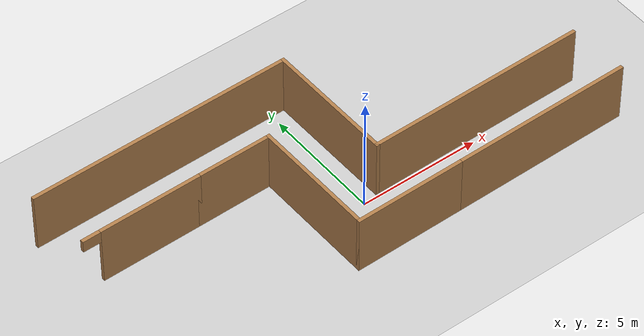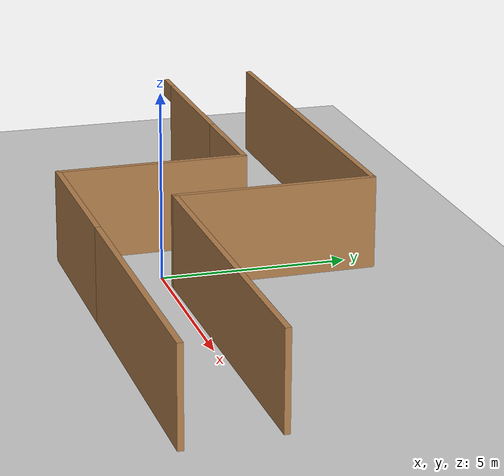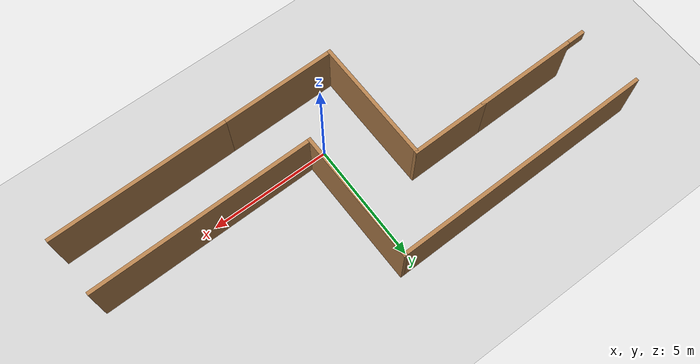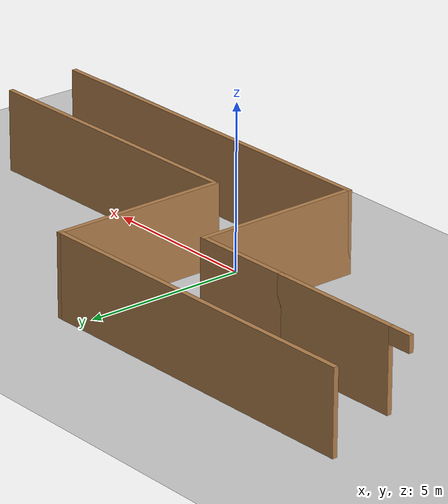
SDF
<sdf version="1.7">
 <world name="default">
  <model name="ground_plane">
   <static>1</static>
   <link name="link">
    <collision name="collision">
     <geometry><plane><normal>0 0 1</normal><size>100 100</size></plane></geometry>
     <surface><friction><ode><mu>100</mu><mu2>50</mu2></ode></friction></surface>
    </collision>
    <visual name="visual">
     <cast_shadows>0</cast_shadows>
     <geometry><plane><normal>0 0 1</normal><size>100 100</size></plane></geometry>
     <material>
      <script><uri>file://media/materials/scripts/gazebo.material</uri><name>Gazebo/Grey</name></script>
     </material>
    </visual>
   </link>
  </model>
  <light name="sun" type="directional">
   <pose>0 0 10 0 -0 0</pose>
   <diffuse>0.8 0.8 0.8 1</diffuse>
   <specular>0.2 0.2 0.2 1</specular>
   <attenuation>
    <range>1000</range>
    <constant>0.9</constant>
    <linear>0.01</linear>
    <quadratic>0.001</quadratic>
   </attenuation>
   <direction>-0.5 0.1 -0.9</direction>
   <spot><inner_angle>0</inner_angle><outer_angle>0</outer_angle><falloff>0</falloff></spot>
  </light>
  <scene><shadows>0</shadows><ambient>0.4 0.4 0.4 1</ambient><background>0.7 0.7 0.7 1</background></scene>
  <physics type="ode">
   <real_time_update_rate>1000</real_time_update_rate>
   <max_step_size>0.001</max_step_size>
   <real_time_factor>1</real_time_factor>
   <ode>
    <solver>
     <type>quick</type>
     <iters>150</iters>
     <precon_iters>0</precon_iters>
     <sor>1.4</sor>
     <use_dynamic_moi_rescaling>1</use_dynamic_moi_rescaling>
    </solver>
    <constraints>
     <cfm>1e-05</cfm>
     <erp>0.2</erp>
     <contact_max_correcting_vel>2000</contact_max_correcting_vel>
     <contact_surface_layer>0.01</contact_surface_layer>
    </constraints>
   </ode>
  </physics>
  <gravity>0 0 -9.8</gravity>
  <magnetic_field>6e-06 2.3e-05 -4.2e-05</magnetic_field>
  <atmosphere type="adiabatic"/>
  <audio><device>default</device></audio>
  <spherical_coordinates>
   <surface_model>EARTH_WGS84</surface_model>
   <latitude_deg>0</latitude_deg>
   <longitude_deg>0</longitude_deg>
   <elevation>0</elevation>
   <heading_deg>0</heading_deg>
  </spherical_coordinates>
  <model name="maze">
   <pose>-0.140321 1.6336 0 0 0 -1.55919</pose>
   <link name="Wall_10">
    <collision name="Wall_10_Collision">
     <geometry><box><size>9.25 0.15 2.5</size></box></geometry>
     <pose>0 0 1.25 0 -0 0</pose>
    </collision>
    <visual name="Wall_10_Visual">
     <pose>0 0 1.25 0 -0 0</pose>
     <geometry><box><size>9.25 0.15 2.5</size></box></geometry>
     <material>
      <script><uri>file://media/materials/scripts/gazebo.material</uri><name>Gazebo/Wood</name></script>
      <ambient>1 1 1 1</ambient>
     </material>
     <meta><layer>0</layer></meta>
    </visual>
    <pose>1.46014 5.35787 0 0 -0 -1.5708</pose>
   </link>
   <link name="Wall_11">
    <collision name="Wall_11_Collision">
     <geometry><box><size>5.5 0.15 2.5</size></box></geometry>
     <pose>0 0 1.25 0 -0 0</pose>
    </collision>
    <visual name="Wall_11_Visual">
     <pose>0 0 1.25 0 -0 0</pose>
     <geometry><box><size>5.5 0.15 2.5</size></box></geometry>
     <material>
      <script><uri>file://media/materials/scripts/gazebo.material</uri><name>Gazebo/Wood</name></script>
      <ambient>1 1 1 1</ambient>
     </material>
     <meta><layer>0</layer></meta>
    </visual>
    <pose>-1.21486 0.80787 0 0 -0 3.14159</pose>
   </link>
   <link name="Wall_12">
    <collision name="Wall_12_Collision">
     <geometry><box><size>11 0.15 2.5</size></box></geometry>
     <pose>0 0 1.25 0 -0 0</pose>
    </collision>
    <visual name="Wall_12_Visual">
     <pose>0 0 1.25 0 -0 0</pose>
     <geometry><box><size>11 0.15 2.5</size></box></geometry>
     <material>
      <script><uri>file://media/materials/scripts/gazebo.material</uri><name>Gazebo/Wood</name></script>
      <ambient>1 1 1 1</ambient>
     </material>
     <meta><layer>0</layer></meta>
    </visual>
    <pose>-3.88986 -4.61713 0 0 -0 -1.5708</pose>
   </link>
   <link name="Wall_14">
    <pose>-1.21014 -7.43287 0 0 -0 -1.5708</pose>
    <visual name="Wall_14_Visual_0">
     <pose>-0.375348 0 1.25 0 -0 0</pose>
     <geometry><box><size>4.2493 0.15 2.5</size></box></geometry>
     <material>
      <script><uri>file://media/materials/scripts/gazebo.material</uri><name>Gazebo/Wood</name></script>
      <ambient>1 1 1 1</ambient>
     </material>
     <meta><layer>0</layer></meta>
    </visual>
    <collision name="Wall_14_Collision_0">
     <geometry><box><size>4.2493 0.15 2.5</size></box></geometry>
     <pose>-0.375348 0 1.25 0 -0 0</pose>
    </collision>
    <visual name="Wall_14_Visual_1">
     <pose>2.12465 0 2.25 0 -0 0</pose>
     <geometry><box><size>0.750695 0.15 0.5</size></box></geometry>
     <material>
      <script><uri>file://media/materials/scripts/gazebo.material</uri><name>Gazebo/Wood</name></script>
      <ambient>1 1 1 1</ambient>
     </material>
     <meta><layer>0</layer></meta>
    </visual>
    <collision name="Wall_14_Collision_1">
     <geometry><box><size>0.750695 0.15 0.5</size></box></geometry>
     <pose>2.12465 0 2.25 0 -0 0</pose>
    </collision>
   </link>
   <link name="Wall_2">
    <collision name="Wall_2_Collision">
     <geometry><box><size>3.25 0.15 2.5</size></box></geometry>
     <pose>0 0 1.25 0 -0 0</pose>
    </collision>
    <visual name="Wall_2_Visual">
     <pose>0 0 1.25 0 -0 0</pose>
     <geometry><box><size>3.25 0.15 2.5</size></box></geometry>
     <material>
      <script><uri>file://media/materials/scripts/gazebo.material</uri><name>Gazebo/Wood</name></script>
      <ambient>1 1 1 1</ambient>
     </material>
     <meta><layer>0</layer></meta>
    </visual>
    <pose>-1.21014 -3.45787 0 0 -0 1.5708</pose>
   </link>
   <link name="Wall_3">
    <collision name="Wall_3_Collision">
     <geometry><box><size>5.25 0.15 2.5</size></box></geometry>
     <pose>0 0 1.25 0 -0 0</pose>
    </collision>
    <visual name="Wall_3_Visual">
     <pose>0 0 1.25 0 -0 0</pose>
     <geometry><box><size>5.25 0.15 2.5</size></box></geometry>
     <material>
      <script><uri>file://media/materials/scripts/gazebo.material</uri><name>Gazebo/Wood</name></script>
      <ambient>1 1 1 1</ambient>
     </material>
     <meta><layer>0</layer></meta>
    </visual>
    <pose>1.33986 -1.90787 0 0 -0 0</pose>
   </link>
   <link name="Wall_5">
    <collision name="Wall_5_Collision">
     <geometry><box><size>4.75 0.15 2.5</size></box></geometry>
     <pose>0 0 1.25 0 -0 0</pose>
    </collision>
    <visual name="Wall_5_Visual">
     <pose>0 0 1.25 0 -0 0</pose>
     <geometry><box><size>4.75 0.15 2.5</size></box></geometry>
     <material>
      <script><uri>file://media/materials/scripts/gazebo.material</uri><name>Gazebo/Wood</name></script>
      <ambient>1 1 1 1</ambient>
     </material>
     <meta><layer>0</layer></meta>
    </visual>
    <pose>3.88986 0.39213 0 0 -0 1.5708</pose>
   </link>
   <link name="Wall_6">
    <collision name="Wall_6_Collision">
     <geometry><box><size>7.5 0.15 2.5</size></box></geometry>
     <pose>0 0 1.25 0 -0 0</pose>
    </collision>
    <visual name="Wall_6_Visual">
     <pose>0 0 1.25 0 -0 0</pose>
     <geometry><box><size>7.5 0.15 2.5</size></box></geometry>
     <material>
      <script><uri>file://media/materials/scripts/gazebo.material</uri><name>Gazebo/Wood</name></script>
      <ambient>1 1 1 1</ambient>
     </material>
     <meta><layer>0</layer></meta>
    </visual>
    <pose>3.88986 6.36713 0 0 -0 1.5708</pose>
   </link>
   <static>1</static>
  </model>
 </world>
</sdf>
